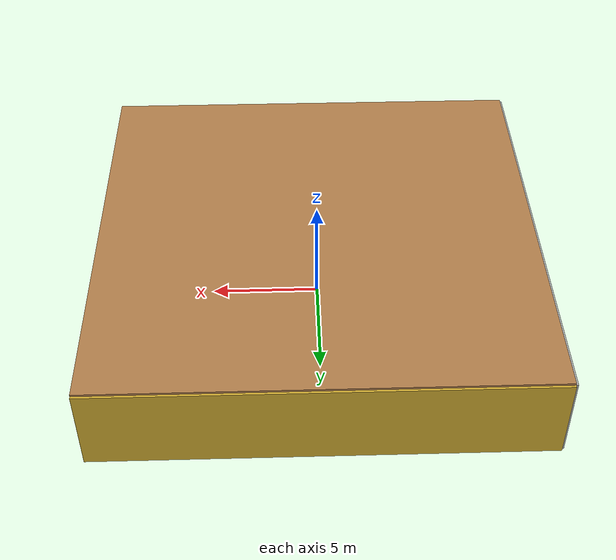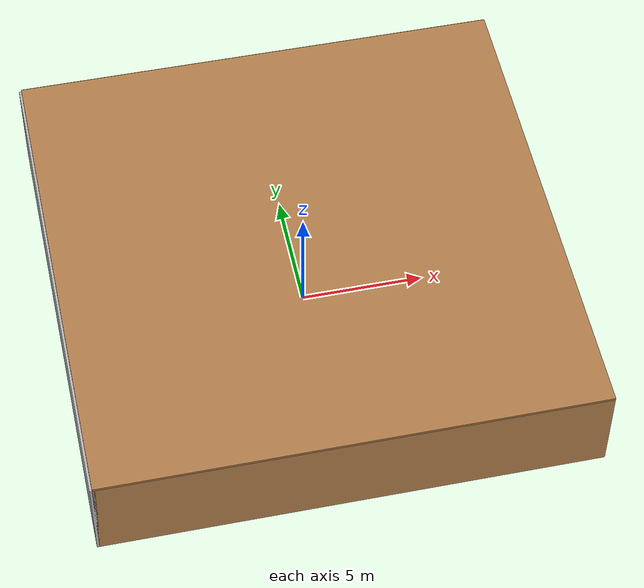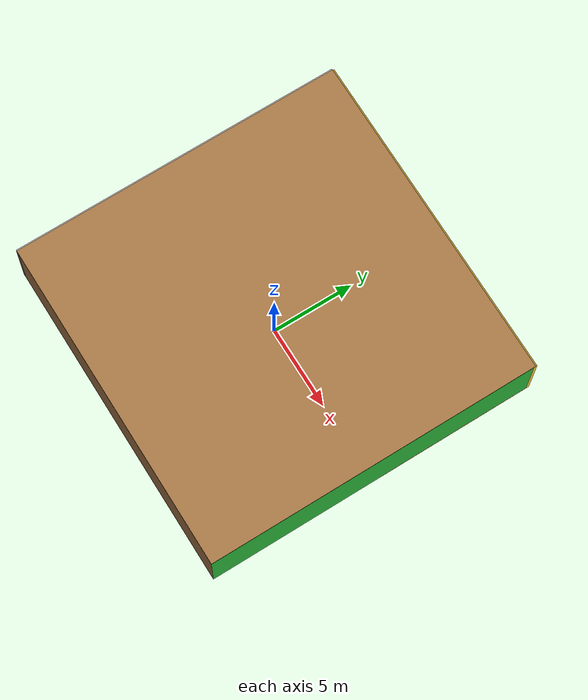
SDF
<sdf version="1.4">
 <world name="default">
  <physics type="ode">
   <max_step_size>0.001</max_step_size>
   <real_time_factor>1</real_time_factor>
   <real_time_update_rate>1000</real_time_update_rate>
   <gravity>0 0 -9.8</gravity>
  </physics>
  <scene><ambient>0.4 0.4 0.4 1</ambient><background>0.7 0.7 0.7 1</background><shadows>1</shadows></scene>
  <model name="Surrounding">
   <static>1</static>
   <link name="Ceiling">
    <collision name="Ceiling_Collision"><geometry><box><size>20 20 0.1</size></box></geometry></collision>
    <visual name="Ceiling_Visual">
     <geometry><box><size>20 20 0.1</size></box></geometry>
     <material>
      <script><uri>file://media/materials/scripts/gazebo.material</uri><name>Gazebo/WoodFloor</name></script>
     </material>
    </visual>
    <pose>0 0 4.05 0 0 0</pose>
   </link>
   <link name="Wall_South">
    <collision name="Wall_South_Collision">
     <geometry><box><size>20 0 4</size></box></geometry>
     <pose>0 0 2 0 -0 0</pose>
    </collision>
    <visual name="Wall_South_Visual">
     <pose>0 0 2 0 -0 0</pose>
     <geometry><box><size>20 0 4</size></box></geometry>
     <material>
      <script><uri>file://media/materials/scripts/gazebo.material</uri><name>Gazebo/WoodPallet</name></script>
     </material>
    </visual>
    <velocity_decay><linear>0</linear><angular>0</angular></velocity_decay>
    <pose>0 -10 0 0 -0 0</pose>
   </link>
   <link name="Wall_East">
    <collision name="Wall_21_Collision">
     <geometry><box><size>20 0 4</size></box></geometry>
     <pose>0 0 2 0 -0 0</pose>
    </collision>
    <visual name="Wall_21_Visual">
     <pose>0 0 2 0 -0 0</pose>
     <geometry><box><size>20 0 4</size></box></geometry>
     <material>
      <script><uri>file://media/materials/scripts/gazebo.material</uri><name>Gazebo/GreenGlow</name></script>
     </material>
    </visual>
    <velocity_decay><linear>0</linear><angular>0</angular></velocity_decay>
    <pose>10 0 0 0 -0 1.5708</pose>
   </link>
   <link name="Wall_North">
    <collision name="Wall_22_Collision">
     <geometry><box><size>20 0.2 4</size></box></geometry>
     <pose>0 0 2 0 -0 0</pose>
    </collision>
    <visual name="Wall_22_Visual">
     <pose>0 0 2 0 -0 0</pose>
     <geometry><box><size>20 0.2 4</size></box></geometry>
     <material>
      <script><uri>file://media/materials/scripts/gazebo.material</uri><name>Gazebo/Gold</name></script>
     </material>
    </visual>
    <velocity_decay><linear>0</linear><angular>0</angular></velocity_decay>
    <pose>0 10 0 0 -0 0</pose>
   </link>
   <link name="Wall_West">
    <collision name="Wall_23_Collision">
     <geometry><box><size>20 0.2 4</size></box></geometry>
     <pose>0 0 2 0 -0 0</pose>
    </collision>
    <visual name="Wall_23_Visual">
     <pose>0 0 2 0 -0 0</pose>
     <geometry><box><size>20 0.2 4</size></box></geometry>
     <material>
      <script><uri>file://media/materials/scripts/gazebo.material</uri><name>Gazebo/Pioneer2Body</name></script>
     </material>
    </visual>
    <velocity_decay><linear>0</linear><angular>0</angular></velocity_decay>
    <pose>-10 0 0 0 0 -1.5708</pose>
   </link>
   <link name="Ground_link">
    <collision name="collision">
     <pose>0 0 .05 0 -0 0</pose>
     <geometry><box><size>20 20 0.1</size></box></geometry>
    </collision>
    <visual name="visual">
     <pose>0 0 .05 0 -0 0</pose>
     <geometry><box><size>20 20 0.1</size></box></geometry>
     <material>
      <script><uri>file://media/materials/scripts/gazebo.material</uri><name>Gazebo/Yellow</name></script>
     </material>
    </visual>
   </link>
   <static>1</static>
  </model>
  <spherical_coordinates>
   <surface_model>EARTH_WGS84</surface_model>
   <latitude_deg>0</latitude_deg>
   <longitude_deg>0</longitude_deg>
   <elevation>0</elevation>
   <heading_deg>0</heading_deg>
  </spherical_coordinates>
  <light name="lightball_0" type="diffuse">
   <diffuse>0.8 0.8 0.8 1</diffuse>
   <specular>0.2 0.2 0.2 1</specular>
   <attenuation>
    <range>100</range>
    <constant>0.7</constant>
    <linear>0.01</linear>
    <quadratic>0.001</quadratic>
   </attenuation>
   <direction>-0.5 0.1 -0.9</direction>
   <pose>4.79534710592 0.619966395768 2.92559397348 0 0 0</pose>
  </light>
  <light name="lightball_1" type="diffuse">
   <diffuse>0.8 0.8 0.8 1</diffuse>
   <specular>0.2 0.2 0.2 1</specular>
   <attenuation>
    <range>100</range>
    <constant>0.7</constant>
    <linear>0.01</linear>
    <quadratic>0.001</quadratic>
   </attenuation>
   <direction>-0.5 0.1 -0.9</direction>
   <pose>1.28409227201 -8.78389060743 2.20756170634 0 0 0</pose>
  </light>
  <light name="lightball_2" type="diffuse">
   <diffuse>0.8 0.8 0.8 1</diffuse>
   <specular>0.2 0.2 0.2 1</specular>
   <attenuation>
    <range>100</range>
    <constant>0.7</constant>
    <linear>0.01</linear>
    <quadratic>0.001</quadratic>
   </attenuation>
   <direction>-0.5 0.1 -0.9</direction>
   <pose>-1.86600983259 6.94295622097 1.28782644026 0 0 0</pose>
  </light>
  <light name="lightball_3" type="diffuse">
   <diffuse>0.8 0.8 0.8 1</diffuse>
   <specular>0.2 0.2 0.2 1</specular>
   <attenuation>
    <range>100</range>
    <constant>0.7</constant>
    <linear>0.01</linear>
    <quadratic>0.001</quadratic>
   </attenuation>
   <direction>-0.5 0.1 -0.9</direction>
   <pose>3.36286567819 -7.98373742611 2.11500276106 0 0 0</pose>
  </light>
  <light name="lightball_4" type="diffuse">
   <diffuse>0.8 0.8 0.8 1</diffuse>
   <specular>0.2 0.2 0.2 1</specular>
   <attenuation>
    <range>100</range>
    <constant>0.7</constant>
    <linear>0.01</linear>
    <quadratic>0.001</quadratic>
   </attenuation>
   <direction>-0.5 0.1 -0.9</direction>
   <pose>-2.26329960523 -0.159924060992 3.53823771529 0 0 0</pose>
  </light>
  <light name="lightball_5" type="diffuse">
   <diffuse>0.8 0.8 0.8 1</diffuse>
   <specular>0.2 0.2 0.2 1</specular>
   <attenuation>
    <range>100</range>
    <constant>0.7</constant>
    <linear>0.01</linear>
    <quadratic>0.001</quadratic>
   </attenuation>
   <direction>-0.5 0.1 -0.9</direction>
   <pose>7.31046021368 -5.6754796872 0.730706349246 0 0 0</pose>
  </light>
  <include><uri>model://cabinet</uri><pose>-2.54270842005 4.25348345651 0 0 0 1.74034474352</pose></include>
  <include><uri>model://cabinet</uri><pose>2.56382474258 -0.627140193411 0 0 0 2.25488218737</pose></include>
  <include>
   <uri>model://textured_shapes</uri>
   <pose>0.882658730797 4.3243020773 0 0 0 2.89900631175</pose>
  </include>
  <include>
   <uri>model://robocup_3Dsim_goal</uri>
   <pose>3.92354265521 -1.84323907928 0 0 0 1.553065487</pose>
  </include>
  <include>
   <uri>model://robocup_3Dsim_goal</uri>
   <pose>7.32178170928 -7.28546539634 0 0 0 0.393884935073</pose>
  </include>
 </world>
</sdf>

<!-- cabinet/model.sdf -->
<sdf version="1.5">
  <model name="cabinet">
    <static>true</static>
    <link name="cabinet_bottom_plate">
      <inertial>
        <pose>0 0 -1 0 0 0</pose>
        <inertia>
          <ixx>2.050000</ixx>
          <ixy>0</ixy>
          <ixz>0</ixz>
          <iyy>2.050000</iyy>
          <iyz>0</iyz>
          <izz>2.050000</izz>
        </inertia>
        <mass>25.000000</mass>
      </inertial>
      <collision name="cabinet_bottom_plate_geom">
        <pose>0 0 0.010000 0 0 0</pose>
        <geometry>
          <box>
            <size>0.450000 0.450000 0.020000</size>
          </box>
        </geometry>
      </collision>
      <visual name="cabinet_bottom_plate_geom_visual">
        <pose>0 0 0.010000 0 0 0</pose>
        <geometry>
          <box>
            <size>0.450000 0.450000 0.020000</size>
          </box>
        </geometry>
        <material>
          <script>
            <uri>model://media/materials/scripts/gazebo.material</uri>
            <name>Gazebo/Wood</name>
          </script>
        </material>
      </visual>
      <collision name="cabinet_bottom_plate_geom_cabinet_back_plate">
        <pose>0.235000 0 0.510000 0 0 0</pose>
        <geometry>
          <box>
            <size>0.020000 0.450000 1.020000</size>
          </box>
        </geometry>
      </collision>
      <visual name="cabinet_bottom_plate_geom_cabinet_back_plate_visual">
        <pose>0.235000 0 0.510000 0 0 0</pose>
        <geometry>
          <box>
            <size>0.020000 0.450000 1.020000</size>
          </box>
        </geometry>
        <material>
          <script>
            <uri>model://media/materials/scripts/gazebo.material</uri>
            <name>Gazebo/Wood</name>
          </script>
        </material>
      </visual>
      <collision name="cabinet_bottom_plate_geom_cabinet_left_plate">
        <pose>0 0.235000 0.510000 0 0 0</pose>
        <geometry>
          <box>
            <size>0.450000 0.020000 1.020000</size>
          </box>
        </geometry>
      </collision>
      <visual name="cabinet_bottom_plate_geom_cabinet_left_plate_visual">
        <pose>0 0.235000 0.510000 0 0 0</pose>
        <geometry>
          <box>
            <size>0.450000 0.020000 1.020000</size>
          </box>
        </geometry>
        <material>
          <script>
            <uri>model://media/materials/scripts/gazebo.material</uri>
            <name>Gazebo/Wood</name>
          </script>
        </material>
      </visual>
      <collision name="cabinet_bottom_plate_geom_cabinet_middle_plate">
        <pose>0 0 0.510000 0 0 0</pose>
        <geometry>
          <box>
            <size>0.450000 0.450000 0.020000</size>
          </box>
        </geometry>
      </collision>
      <visual name="cabinet_bottom_plate_geom_cabinet_middle_plate_visual">
        <pose>0 0 0.510000 0 0 0</pose>
        <geometry>
          <box>
            <size>0.450000 0.450000 0.020000</size>
          </box>
        </geometry>
        <material>
          <script>
            <uri>model://media/materials/scripts/gazebo.material</uri>
            <name>Gazebo/Wood</name>
          </script>
        </material>
      </visual>
      <collision name="cabinet_bottom_plate_geom_cabinet_right_plate">
        <pose>0 -0.235000 0.510000 0 0 0</pose>
        <geometry>
          <box>
            <size>0.450000 0.020000 1.020000</size>
          </box>
        </geometry>
      </collision>
      <visual name="cabinet_bottom_plate_geom_cabinet_right_plate_visual">
        <pose>0 -0.235000 0.510000 0 0 0</pose>
        <geometry>
          <box>
            <size>0.450000 0.020000 1.020000</size>
          </box>
        </geometry>
        <material>
          <script>
            <uri>model://media/materials/scripts/gazebo.material</uri>
            <name>Gazebo/Wood</name>
          </script>
        </material>
      </visual>
      <collision name="cabinet_bottom_plate_geom_cabinet_top_plate">
        <pose>0 0 1.010000 0 0 0</pose>
        <geometry>
          <box>
            <size>0.450000 0.450000 0.020000</size>
          </box>
        </geometry>
      </collision>
      <visual name="cabinet_bottom_plate_geom_cabinet_top_plate_visual">
        <pose>0 0 1.010000 0 0 0</pose>
        <geometry>
          <box>
            <size>0.450000 0.450000 0.020000</size>
          </box>
        </geometry>
        <material>
          <script>
            <uri>model://media/materials/scripts/gazebo.material</uri>
            <name>Gazebo/Wood</name>
          </script>
        </material>
      </visual>
    </link>
  </model>
</sdf>

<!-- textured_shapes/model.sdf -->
<sdf version="1.6">
  <model name="textured_shapes">
    <pose>0 0 0.5 0 0 0</pose>
    <link name="box">
      <pose>0 -1.5 0 0 0 0</pose>
      <collision name="collision">
        <geometry>
          <box>
            <size>1 1 1</size>
          </box>
        </geometry>
      </collision>
      <visual name="visual">
        <geometry>
          <box>
            <size>1 1 1</size>
          </box>
        </geometry>
        <material>
          <script>
            <uri>model://../model_source/models/textured_shapes/materials/scripts</uri>
            <uri>model://../model_source/models/textured_shapes/materials/textures</uri>
            <name>TexturedShape/Squares</name>
          </script>
        </material>
      </visual>
    </link>
    <link name="sphere">
      <collision name="collision">
        <geometry>
          <sphere>
            <radius>0.5</radius>
          </sphere>
        </geometry>
      </collision>
      <visual name="visual">
        <geometry>
          <sphere>
            <radius>0.5</radius>
          </sphere>
        </geometry>
        <material>
          <script>
            <uri>model://../model_source/models/textured_shapes/materials/scripts</uri>
            <uri>model://../model_source/models/textured_shapes/materials/textures</uri>
            <name>TexturedShape/Squares</name>
          </script>
        </material>
      </visual>
    </link>
    <link name="cylinder">
      <pose>0 1.5 0 0 0 0</pose>
      <collision name="collision">
        <geometry>
          <cylinder>
            <radius>0.5</radius>
            <length>1</length>
          </cylinder>
        </geometry>
      </collision>
      <visual name="visual">
        <geometry>
          <cylinder>
            <radius>0.5</radius>
            <length>1</length>
          </cylinder>
        </geometry>
        <material>
          <script>
            <uri>model://../model_source/models/textured_shapes/materials/scripts</uri>
            <uri>model://../model_source/models/textured_shapes/materials/textures</uri>
            <name>TexturedShape/Squares</name>
          </script>
        </material>
      </visual>
    </link>
  </model>
</sdf>

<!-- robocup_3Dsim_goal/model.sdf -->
<sdf version="1.5">
  <model name="robocup_3d_goal">
    <static>true</static>
    <link name="left_post">
      <pose>0 1.05 0.45 0 0 0</pose>
      <collision name="collision">
        <geometry>
          <cylinder>
            <radius>0.05</radius>
            <length>0.9</length>
          </cylinder>
        </geometry>
      </collision>
      <visual name="visual">
        <geometry>
          <cylinder>
            <radius>0.05</radius>
            <length>0.9</length>
          </cylinder>
        </geometry>
        <material>
          <script>
            <uri>file://media/materials/scripts/gazebo.material</uri>
            <name>Gazebo/ZincYellow</name>
          </script>
        </material>
      </visual>
    </link>
    <link name="left_support_horiz_lower">
      <pose>0.30 1.05 0.01 0 0 0</pose>
      <collision name="collision">
        <geometry>
          <box>
            <size>0.50 0.02 0.02</size>
          </box>
        </geometry>
      </collision>
      <visual name="visual">
        <geometry>
          <box>
            <size>0.50 0.02 0.02</size>
          </box>
        </geometry>
        <material>
          <script>
            <uri>file://media/materials/scripts/gazebo.material</uri>
            <name>Gazebo/White</name>
          </script>
        </material>
      </visual>
    </link>
    <link name="left_support_horiz_upper">
      <pose>0.30 1.05 0.79 0 0 0</pose>
      <collision name="collision">
        <geometry>
          <box>
            <size>0.50 0.02 0.02</size>
          </box>
        </geometry>
      </collision>
      <visual name="visual">
        <geometry>
          <box>
            <size>0.50 0.02 0.02</size>
          </box>
        </geometry>
        <material>
          <script>
            <uri>file://media/materials/scripts/gazebo.material</uri>
            <name>Gazebo/White</name>
          </script>
        </material>
      </visual>
    </link>
    <link name="left_support_vertical">
      <pose>0.56 1.05 0.4 0 1.5708 0</pose>
      <collision name="collision">
        <geometry>
          <box>
            <size>0.80 0.02 0.02</size>
          </box>
        </geometry>
      </collision>
      <visual name="visual">
        <geometry>
          <box>
            <size>0.80 0.02 0.02</size>
          </box>
        </geometry>
        <material>
          <script>
            <uri>file://media/materials/scripts/gazebo.material</uri>
            <name>Gazebo/White</name>
          </script>
        </material>
      </visual>
    </link>
    <link name="right_support_horiz_lower">
      <pose>0.30 -1.05 0.01 0 0 0</pose>
      <collision name="collision">
        <geometry>
          <box>
            <size>0.50 0.02 0.02</size>
          </box>
        </geometry>
      </collision>
      <visual name="visual">
        <geometry>
          <box>
            <size>0.50 0.02 0.02</size>
          </box>
        </geometry>
        <material>
          <script>
            <uri>file://media/materials/scripts/gazebo.material</uri>
            <name>Gazebo/White</name>
          </script>
        </material>
      </visual>
    </link>
    <link name="right_support_horiz_upper">
      <pose>0.30 -1.05 0.79 0 0 0</pose>
      <collision name="collision">
        <geometry>
          <box>
            <size>0.50 0.02 0.02</size>
          </box>
        </geometry>
      </collision>
      <visual name="visual">
        <geometry>
          <box>
            <size>0.50 0.02 0.02</size>
          </box>
        </geometry>
        <material>
          <script>
            <uri>file://media/materials/scripts/gazebo.material</uri>
            <name>Gazebo/White</name>
          </script>
        </material>
      </visual>
    </link>
    <link name="right_support_vertical">
      <pose>0.56 -1.05 0.4 0 1.5708 0</pose>
      <collision name="collision">
        <geometry>
          <box>
            <size>0.80 0.02 0.02</size>
          </box>
        </geometry>
      </collision>
      <visual name="visual">
        <geometry>
          <box>
            <size>0.80 0.02 0.02</size>
          </box>
        </geometry>
        <material>
          <script>
            <uri>file://media/materials/scripts/gazebo.material</uri>
            <name>Gazebo/White</name>
          </script>
        </material>
      </visual>
    </link>
    <link name="center_support_horiz_lower">
      <pose>0.56 0 0.01 0 1.5708 0</pose>
      <collision name="collision">
        <geometry>
          <box>
            <size>0.02 2.08 0.02</size>
          </box>
        </geometry>
      </collision>
      <visual name="visual">
        <geometry>
          <box>
            <size>0.02 2.08 0.02</size>
          </box>
        </geometry>
        <material>
          <script>
            <uri>file://media/materials/scripts/gazebo.material</uri>
            <name>Gazebo/White</name>
          </script>
        </material>
      </visual>
    </link>
    <link name="center_support_horiz_upper">
      <pose>0.56 0 0.79 0 1.5708 0</pose>
      <collision name="collision">
        <geometry>
          <box>
            <size>0.02 2.08 0.02</size>
          </box>
        </geometry>
      </collision>
      <visual name="visual">
        <geometry>
          <box>
            <size>0.02 2.08 0.02</size>
          </box>
        </geometry>
        <material>
          <script>
            <uri>file://media/materials/scripts/gazebo.material</uri>
            <name>Gazebo/White</name>
          </script>
        </material>
      </visual>
    </link>
    <link name="right_post">
      <pose>0 -1.05 0.45 0 0 0</pose>
      <collision name="collision">
        <geometry>
          <cylinder>
            <radius>0.05</radius>
            <length>0.9</length>
          </cylinder>
        </geometry>
      </collision>
      <visual name="visual">
        <geometry>
          <cylinder>
            <radius>0.05</radius>
            <length>0.9</length>
          </cylinder>
        </geometry>
        <material>
          <script>
            <uri>file://media/materials/scripts/gazebo.material</uri>
            <name>Gazebo/ZincYellow</name>
          </script>
        </material>
      </visual>
    </link>
    <link name="crossbar">
      <pose>0 0 0.85 1.57 1.57 0</pose>
      <collision name="collision">
        <geometry>
          <cylinder>
            <radius>0.05</radius>
            <length>2.0</length>
          </cylinder>
        </geometry>
      </collision>
      <visual name="visual">
        <geometry>
          <cylinder>
            <radius>0.05</radius>
            <length>2.0</length>
          </cylinder>
        </geometry>
        <material>
          <script>
            <uri>file://media/materials/scripts/gazebo.material</uri>
            <name>Gazebo/ZincYellow</name>
          </script>
        </material>
      </visual>
    </link>
    <link name="center_net">
      <pose>0.56 0 0.40 0 0 0</pose>
      <collision name="collision">
        <geometry>
          <box>
            <size>0.01 2.1 0.80</size>
          </box>
        </geometry>
      </collision>
      <visual name="visual">
        <geometry>
          <box>
            <size>0.01 2.1 0.80</size>
          </box>
        </geometry>
        <material>
          <script>
            <uri>model://../model_source/models/robocup09_spl_field/materials/scripts/</uri>
            <uri>model://../model_source/models/robocup09_spl_field/materials/textures/</uri>
            <name>RoboCup/Net</name>
          </script>
        </material>
      </visual>
    </link>
    <link name="left_net">
      <pose>0.30 1.05 0.40 0 0 0</pose>
      <collision name="collision">
        <geometry>
          <box>
            <size>0.50 0.01 0.76</size>
          </box>
        </geometry>
      </collision>
      <visual name="visual">
        <geometry>
          <box>
            <size>0.50 0.01 0.76</size>
          </box>
        </geometry>
        <material>
          <script>
            <uri>model://../model_source/models/robocup09_spl_field/materials/scripts/</uri>
            <uri>model://../model_source/models/robocup09_spl_field/materials/textures/</uri>
            <name>RoboCup/Net</name>
          </script>
        </material>
      </visual>
    </link>
    <link name="right_net">
      <pose>0.30 -1.05 0.40 0 0 0</pose>
      <collision name="collision">
        <geometry>
          <box>
            <size>0.50 0.01 0.76</size>
          </box>
        </geometry>
      </collision>
      <visual name="visual">
        <geometry>
          <box>
            <size>0.50 0.01 0.76</size>
          </box>
        </geometry>
        <material>
          <script>
            <uri>model://../model_source/models/robocup09_spl_field/materials/scripts/</uri>
            <uri>model://../model_source/models/robocup09_spl_field/materials/textures/</uri>
            <name>RoboCup/Net</name>
          </script>
        </material>
      </visual>
    </link>
  </model>
</sdf>
